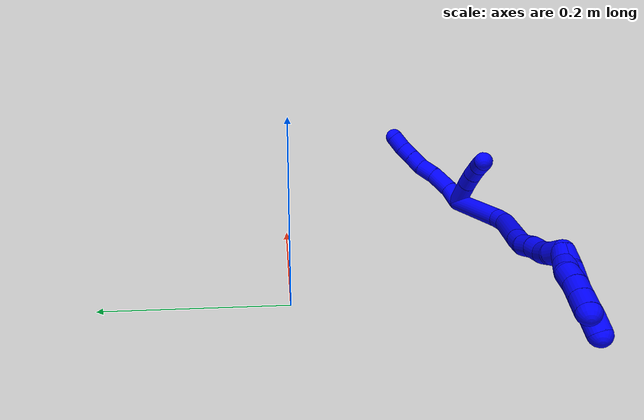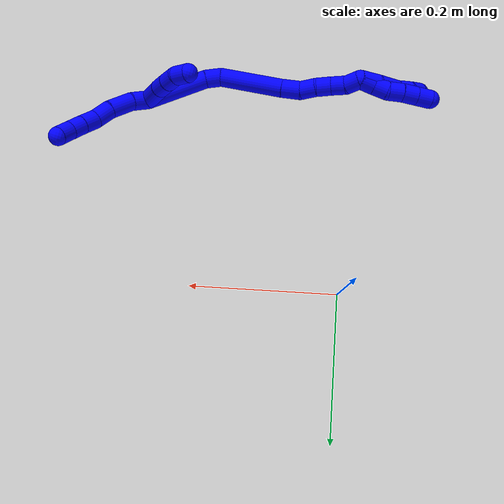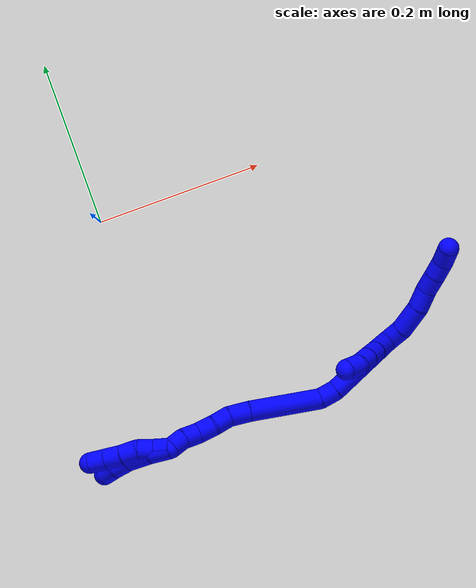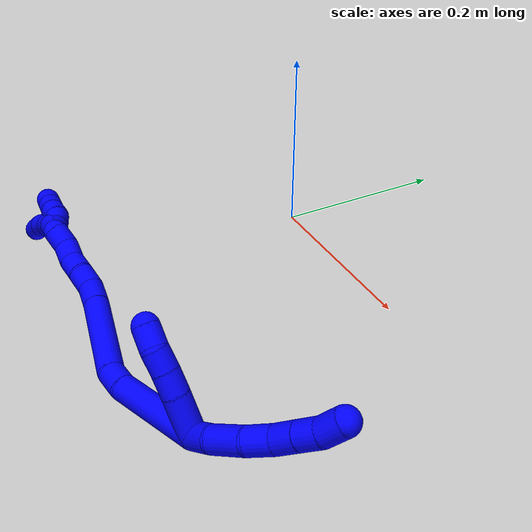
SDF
<sdf version="1.7">
 <world name="default">
  <model name="1">
   <static>0</static>
   <link name="1">
    <collision name="collision-cylinder-e_1_2_8">
     <pose>0.003713 0.005586 0.011015 -0.469323 0.292013 -0.070282</pose>
     <geometry><cylinder><radius>0.0125</radius><length>0.025792</length></cylinder></geometry>
     <surface>
      <friction><ode><mu>1.16</mu><mu2>1.16</mu2><slip1>0</slip1><slip2>0</slip2></ode></friction>
      <contact><ode><kp>1e+06</kp><kd>1</kd><max_vel>0</max_vel><min_depth>0.001</min_depth></ode></contact>
     </surface>
    </collision>
    <visual name="visual-cylinder-e_1_2_8">
     <pose>0.003713 0.005586 0.011015 -0.469323 0.292013 -0.070282</pose>
     <geometry><cylinder><radius>0.0125</radius><length>0.025792</length></cylinder></geometry>
     <material><ambient>0 0 1 1</ambient></material>
    </visual>
    <collision name="collision-cylinder-e_2_8_9">
     <pose>0.01546 0.019706 0.03456 -0.597923 0.487379 -0.152956</pose>
     <geometry><cylinder><radius>0.0125</radius><length>0.034316</length></cylinder></geometry>
     <surface>
      <friction><ode><mu>1.16</mu><mu2>1.16</mu2><slip1>0</slip1><slip2>0</slip2></ode></friction>
      <contact><ode><kp>1e+06</kp><kd>1</kd><max_vel>0</max_vel><min_depth>0.001</min_depth></ode></contact>
     </surface>
    </collision>
    <visual name="visual-cylinder-e_2_8_9">
     <pose>0.01546 0.019706 0.03456 -0.597923 0.487379 -0.152956</pose>
     <geometry><cylinder><radius>0.0125</radius><length>0.034316</length></cylinder></geometry>
     <material><ambient>0 0 1 1</ambient></material>
    </visual>
    <collision name="collision-cylinder-e_3_9_10">
     <pose>0.031002 0.035102 0.054379 -0.755213 0.6434 -0.262858</pose>
     <geometry><cylinder><radius>0.0125</radius><length>0.025026</length></cylinder></geometry>
     <surface>
      <friction><ode><mu>1.16</mu><mu2>1.16</mu2><slip1>0</slip1><slip2>0</slip2></ode></friction>
      <contact><ode><kp>1e+06</kp><kd>1</kd><max_vel>0</max_vel><min_depth>0.001</min_depth></ode></contact>
     </surface>
    </collision>
    <visual name="visual-cylinder-e_3_9_10">
     <pose>0.031002 0.035102 0.054379 -0.755213 0.6434 -0.262858</pose>
     <geometry><cylinder><radius>0.0125</radius><length>0.025026</length></cylinder></geometry>
     <material><ambient>0 0 1 1</ambient></material>
    </visual>
    <collision name="collision-cylinder-e_4_10_11">
     <pose>0.043055 0.048943 0.068872 -0.769568 0.425494 -0.174516</pose>
     <geometry><cylinder><radius>0.0125</radius><length>0.022024</length></cylinder></geometry>
     <surface>
      <friction><ode><mu>1.16</mu><mu2>1.16</mu2><slip1>0</slip1><slip2>0</slip2></ode></friction>
      <contact><ode><kp>1e+06</kp><kd>1</kd><max_vel>0</max_vel><min_depth>0.001</min_depth></ode></contact>
     </surface>
    </collision>
    <visual name="visual-cylinder-e_4_10_11">
     <pose>0.043055 0.048943 0.068872 -0.769568 0.425494 -0.174516</pose>
     <geometry><cylinder><radius>0.0125</radius><length>0.022024</length></cylinder></geometry>
     <material><ambient>0 0 1 1</ambient></material>
    </visual>
    <collision name="collision-cylinder-e_5_11_12">
     <pose>0.052066 0.062315 0.082564 -0.778003 0.455869 -0.18959</pose>
     <geometry><cylinder><radius>0.0125</radius><length>0.020287</length></cylinder></geometry>
     <surface>
      <friction><ode><mu>1.16</mu><mu2>1.16</mu2><slip1>0</slip1><slip2>0</slip2></ode></friction>
      <contact><ode><kp>1e+06</kp><kd>1</kd><max_vel>0</max_vel><min_depth>0.001</min_depth></ode></contact>
     </surface>
    </collision>
    <visual name="visual-cylinder-e_5_11_12">
     <pose>0.052066 0.062315 0.082564 -0.778003 0.455869 -0.18959</pose>
     <geometry><cylinder><radius>0.0125</radius><length>0.020287</length></cylinder></geometry>
     <material><ambient>0 0 1 1</ambient></material>
    </visual>
    <collision name="collision-cylinder-e_6_12_6">
     <pose>0.059896 0.077622 0.095083 -0.975977 0.302982 -0.161713</pose>
     <geometry><cylinder><radius>0.0125</radius><length>0.022554</length></cylinder></geometry>
     <surface>
      <friction><ode><mu>1.16</mu><mu2>1.16</mu2><slip1>0</slip1><slip2>0</slip2></ode></friction>
      <contact><ode><kp>1e+06</kp><kd>1</kd><max_vel>0</max_vel><min_depth>0.001</min_depth></ode></contact>
     </surface>
    </collision>
    <visual name="visual-cylinder-e_6_12_6">
     <pose>0.059896 0.077622 0.095083 -0.975977 0.302982 -0.161713</pose>
     <geometry><cylinder><radius>0.0125</radius><length>0.022554</length></cylinder></geometry>
     <material><ambient>0 0 1 1</ambient></material>
    </visual>
    <collision name="collision-cylinder-e_1_2_13">
     <pose>-0.012612 0.013924 -0.003633 -1.826 -0.719668 0.906317</pose>
     <geometry><cylinder><radius>0.0125</radius><length>0.038269</length></cylinder></geometry>
     <surface>
      <friction><ode><mu>1.16</mu><mu2>1.16</mu2><slip1>0</slip1><slip2>0</slip2></ode></friction>
      <contact><ode><kp>1e+06</kp><kd>1</kd><max_vel>0</max_vel><min_depth>0.001</min_depth></ode></contact>
     </surface>
    </collision>
    <visual name="visual-cylinder-e_1_2_13">
     <pose>-0.012612 0.013924 -0.003633 -1.826 -0.719668 0.906317</pose>
     <geometry><cylinder><radius>0.0125</radius><length>0.038269</length></cylinder></geometry>
     <material><ambient>0 0 1 1</ambient></material>
    </visual>
    <collision name="collision-cylinder-e_2_13_14">
     <pose>-0.032245 0.035188 -0.010142 -1.94433 -0.727507 1.01808</pose>
     <geometry><cylinder><radius>0.0125</radius><length>0.021115</length></cylinder></geometry>
     <surface>
      <friction><ode><mu>1.16</mu><mu2>1.16</mu2><slip1>0</slip1><slip2>0</slip2></ode></friction>
      <contact><ode><kp>1e+06</kp><kd>1</kd><max_vel>0</max_vel><min_depth>0.001</min_depth></ode></contact>
     </surface>
    </collision>
    <visual name="visual-cylinder-e_2_13_14">
     <pose>-0.032245 0.035188 -0.010142 -1.94433 -0.727507 1.01808</pose>
     <geometry><cylinder><radius>0.0125</radius><length>0.021115</length></cylinder></geometry>
     <material><ambient>0 0 1 1</ambient></material>
    </visual>
    <collision name="collision-cylinder-e_3_14_15">
     <pose>-0.046192 0.049055 -0.01625 -2.0305 -0.760358 1.14395</pose>
     <geometry><cylinder><radius>0.0125</radius><length>0.020099</length></cylinder></geometry>
     <surface>
      <friction><ode><mu>1.16</mu><mu2>1.16</mu2><slip1>0</slip1><slip2>0</slip2></ode></friction>
      <contact><ode><kp>1e+06</kp><kd>1</kd><max_vel>0</max_vel><min_depth>0.001</min_depth></ode></contact>
     </surface>
    </collision>
    <visual name="visual-cylinder-e_3_14_15">
     <pose>-0.046192 0.049055 -0.01625 -2.0305 -0.760358 1.14395</pose>
     <geometry><cylinder><radius>0.0125</radius><length>0.020099</length></cylinder></geometry>
     <material><ambient>0 0 1 1</ambient></material>
    </visual>
    <collision name="collision-cylinder-e_4_15_5">
     <pose>-0.058432 0.061823 -0.025647 -2.35004 -0.544559 1.17821</pose>
     <geometry><cylinder><radius>0.0125</radius><length>0.020517</length></cylinder></geometry>
     <surface>
      <friction><ode><mu>1.16</mu><mu2>1.16</mu2><slip1>0</slip1><slip2>0</slip2></ode></friction>
      <contact><ode><kp>1e+06</kp><kd>1</kd><max_vel>0</max_vel><min_depth>0.001</min_depth></ode></contact>
     </surface>
    </collision>
    <visual name="visual-cylinder-e_4_15_5">
     <pose>-0.058432 0.061823 -0.025647 -2.35004 -0.544559 1.17821</pose>
     <geometry><cylinder><radius>0.0125</radius><length>0.020517</length></cylinder></geometry>
     <material><ambient>0 0 1 1</ambient></material>
    </visual>
    <collision name="collision-cylinder-e_1_2_16">
     <pose>-0.026195 -0.001351 -0.032962 3.10062 -0.671091 -3.02422</pose>
     <geometry><cylinder><radius>0.0125</radius><length>0.084249</length></cylinder></geometry>
     <surface>
      <friction><ode><mu>1.16</mu><mu2>1.16</mu2><slip1>0</slip1><slip2>0</slip2></ode></friction>
      <contact><ode><kp>1e+06</kp><kd>1</kd><max_vel>0</max_vel><min_depth>0.001</min_depth></ode></contact>
     </surface>
    </collision>
    <visual name="visual-cylinder-e_1_2_16">
     <pose>-0.026195 -0.001351 -0.032962 3.10062 -0.671091 -3.02422</pose>
     <geometry><cylinder><radius>0.0125</radius><length>0.084249</length></cylinder></geometry>
     <material><ambient>0 0 1 1</ambient></material>
    </visual>
    <collision name="collision-cylinder-e_2_16_17">
     <pose>-0.057207 -0.001342 -0.075237 -2.99654 -0.473052 2.55607</pose>
     <geometry><cylinder><radius>0.0125</radius><length>0.021148</length></cylinder></geometry>
     <surface>
      <friction><ode><mu>1.16</mu><mu2>1.16</mu2><slip1>0</slip1><slip2>0</slip2></ode></friction>
      <contact><ode><kp>1e+06</kp><kd>1</kd><max_vel>0</max_vel><min_depth>0.001</min_depth></ode></contact>
     </surface>
    </collision>
    <visual name="visual-cylinder-e_2_16_17">
     <pose>-0.057207 -0.001342 -0.075237 -2.99654 -0.473052 2.55607</pose>
     <geometry><cylinder><radius>0.0125</radius><length>0.021148</length></cylinder></geometry>
     <material><ambient>0 0 1 1</ambient></material>
    </visual>
    <collision name="collision-cylinder-e_3_17_18">
     <pose>-0.071049 0.015587 -0.123723 -2.76329 -0.210921 1.01017</pose>
     <geometry><cylinder><radius>0.0125</radius><length>0.086215</length></cylinder></geometry>
     <surface>
      <friction><ode><mu>1.16</mu><mu2>1.16</mu2><slip1>0</slip1><slip2>0</slip2></ode></friction>
      <contact><ode><kp>1e+06</kp><kd>1</kd><max_vel>0</max_vel><min_depth>0.001</min_depth></ode></contact>
     </surface>
    </collision>
    <visual name="visual-cylinder-e_3_17_18">
     <pose>-0.071049 0.015587 -0.123723 -2.76329 -0.210921 1.01017</pose>
     <geometry><cylinder><radius>0.0125</radius><length>0.086215</length></cylinder></geometry>
     <material><ambient>0 0 1 1</ambient></material>
    </visual>
    <collision name="collision-cylinder-e_4_18_19">
     <pose>-0.083384 0.035079 -0.174482 -2.81517 -0.264204 1.35785</pose>
     <geometry><cylinder><radius>0.0125</radius><length>0.025347</length></cylinder></geometry>
     <surface>
      <friction><ode><mu>1.16</mu><mu2>1.16</mu2><slip1>0</slip1><slip2>0</slip2></ode></friction>
      <contact><ode><kp>1e+06</kp><kd>1</kd><max_vel>0</max_vel><min_depth>0.001</min_depth></ode></contact>
     </surface>
    </collision>
    <visual name="visual-cylinder-e_4_18_19">
     <pose>-0.083384 0.035079 -0.174482 -2.81517 -0.264204 1.35785</pose>
     <geometry><cylinder><radius>0.0125</radius><length>0.025347</length></cylinder></geometry>
     <material><ambient>0 0 1 1</ambient></material>
    </visual>
    <collision name="collision-cylinder-e_5_19_20">
     <pose>-0.092564 0.042279 -0.194344 -2.76452 -0.583144 2.00902</pose>
     <geometry><cylinder><radius>0.0125</radius><length>0.021322</length></cylinder></geometry>
     <surface>
      <friction><ode><mu>1.16</mu><mu2>1.16</mu2><slip1>0</slip1><slip2>0</slip2></ode></friction>
      <contact><ode><kp>1e+06</kp><kd>1</kd><max_vel>0</max_vel><min_depth>0.001</min_depth></ode></contact>
     </surface>
    </collision>
    <visual name="visual-cylinder-e_5_19_20">
     <pose>-0.092564 0.042279 -0.194344 -2.76452 -0.583144 2.00902</pose>
     <geometry><cylinder><radius>0.0125</radius><length>0.021322</length></cylinder></geometry>
     <material><ambient>0 0 1 1</ambient></material>
    </visual>
    <collision name="collision-cylinder-e_6_20_21">
     <pose>-0.103053 0.047518 -0.21182 -2.93147 -0.456285 2.28898</pose>
     <geometry><cylinder><radius>0.0125</radius><length>0.020963</length></cylinder></geometry>
     <surface>
      <friction><ode><mu>1.16</mu><mu2>1.16</mu2><slip1>0</slip1><slip2>0</slip2></ode></friction>
      <contact><ode><kp>1e+06</kp><kd>1</kd><max_vel>0</max_vel><min_depth>0.001</min_depth></ode></contact>
     </surface>
    </collision>
    <visual name="visual-cylinder-e_6_20_21">
     <pose>-0.103053 0.047518 -0.21182 -2.93147 -0.456285 2.28898</pose>
     <geometry><cylinder><radius>0.0125</radius><length>0.020963</length></cylinder></geometry>
     <material><ambient>0 0 1 1</ambient></material>
    </visual>
    <collision name="collision-cylinder-e_7_21_22">
     <pose>-0.112095 0.054089 -0.229004 -2.61794 -0.447498 1.40803</pose>
     <geometry><cylinder><radius>0.0125</radius><length>0.020446</length></cylinder></geometry>
     <surface>
      <friction><ode><mu>1.16</mu><mu2>1.16</mu2><slip1>0</slip1><slip2>0</slip2></ode></friction>
      <contact><ode><kp>1e+06</kp><kd>1</kd><max_vel>0</max_vel><min_depth>0.001</min_depth></ode></contact>
     </surface>
    </collision>
    <visual name="visual-cylinder-e_7_21_22">
     <pose>-0.112095 0.054089 -0.229004 -2.61794 -0.447498 1.40803</pose>
     <geometry><cylinder><radius>0.0125</radius><length>0.020446</length></cylinder></geometry>
     <material><ambient>0 0 1 1</ambient></material>
    </visual>
    <collision name="collision-cylinder-e_8_22_1">
     <pose>-0.123493 0.062912 -0.243044 -2.53384 -0.757123 1.80632</pose>
     <geometry><cylinder><radius>0.0125</radius><length>0.02031</length></cylinder></geometry>
     <surface>
      <friction><ode><mu>1.16</mu><mu2>1.16</mu2><slip1>0</slip1><slip2>0</slip2></ode></friction>
      <contact><ode><kp>1e+06</kp><kd>1</kd><max_vel>0</max_vel><min_depth>0.001</min_depth></ode></contact>
     </surface>
    </collision>
    <visual name="visual-cylinder-e_8_22_1">
     <pose>-0.123493 0.062912 -0.243044 -2.53384 -0.757123 1.80632</pose>
     <geometry><cylinder><radius>0.0125</radius><length>0.02031</length></cylinder></geometry>
     <material><ambient>0 0 1 1</ambient></material>
    </visual>
    <collision name="collision-cylinder-e_1_1_23">
     <pose>-0.129876 0.067525 -0.259078 -3.10168 0.059289 -1.95678</pose>
     <geometry><cylinder><radius>0.0125</radius><length>0.02</length></cylinder></geometry>
     <surface>
      <friction><ode><mu>1.16</mu><mu2>1.16</mu2><slip1>0</slip1><slip2>0</slip2></ode></friction>
      <contact><ode><kp>1e+06</kp><kd>1</kd><max_vel>0</max_vel><min_depth>0.001</min_depth></ode></contact>
     </surface>
    </collision>
    <visual name="visual-cylinder-e_1_1_23">
     <pose>-0.129876 0.067525 -0.259078 -3.10168 0.059289 -1.95678</pose>
     <geometry><cylinder><radius>0.0125</radius><length>0.02</length></cylinder></geometry>
     <material><ambient>0 0 1 1</ambient></material>
    </visual>
    <collision name="collision-cylinder-e_2_23_24">
     <pose>-0.129301 0.070815 -0.278625 -2.84826 -0.00175 0.011847</pose>
     <geometry><cylinder><radius>0.0125</radius><length>0.02</length></cylinder></geometry>
     <surface>
      <friction><ode><mu>1.16</mu><mu2>1.16</mu2><slip1>0</slip1><slip2>0</slip2></ode></friction>
      <contact><ode><kp>1e+06</kp><kd>1</kd><max_vel>0</max_vel><min_depth>0.001</min_depth></ode></contact>
     </surface>
    </collision>
    <visual name="visual-cylinder-e_2_23_24">
     <pose>-0.129301 0.070815 -0.278625 -2.84826 -0.00175 0.011847</pose>
     <geometry><cylinder><radius>0.0125</radius><length>0.02</length></cylinder></geometry>
     <material><ambient>0 0 1 1</ambient></material>
    </visual>
    <collision name="collision-cylinder-e_3_24_25">
     <pose>-0.131561 0.074051 -0.297937 -3.10625 -0.226229 2.83296</pose>
     <geometry><cylinder><radius>0.0125</radius><length>0.02</length></cylinder></geometry>
     <surface>
      <friction><ode><mu>1.16</mu><mu2>1.16</mu2><slip1>0</slip1><slip2>0</slip2></ode></friction>
      <contact><ode><kp>1e+06</kp><kd>1</kd><max_vel>0</max_vel><min_depth>0.001</min_depth></ode></contact>
     </surface>
    </collision>
    <visual name="visual-cylinder-e_3_24_25">
     <pose>-0.131561 0.074051 -0.297937 -3.10625 -0.226229 2.83296</pose>
     <geometry><cylinder><radius>0.0125</radius><length>0.02</length></cylinder></geometry>
     <material><ambient>0 0 1 1</ambient></material>
    </visual>
    <collision name="collision-cylinder-e_4_25_26">
     <pose>-0.134957 0.074754 -0.317603 -3.10547 -0.115533 2.53616</pose>
     <geometry><cylinder><radius>0.0125</radius><length>0.02</length></cylinder></geometry>
     <surface>
      <friction><ode><mu>1.16</mu><mu2>1.16</mu2><slip1>0</slip1><slip2>0</slip2></ode></friction>
      <contact><ode><kp>1e+06</kp><kd>1</kd><max_vel>0</max_vel><min_depth>0.001</min_depth></ode></contact>
     </surface>
    </collision>
    <visual name="visual-cylinder-e_4_25_26">
     <pose>-0.134957 0.074754 -0.317603 -3.10547 -0.115533 2.53616</pose>
     <geometry><cylinder><radius>0.0125</radius><length>0.02</length></cylinder></geometry>
     <material><ambient>0 0 1 1</ambient></material>
    </visual>
    <collision name="collision-cylinder-e_5_26_4">
     <pose>-0.137245 0.075442 -0.33746 -3.10839 -0.113745 2.57411</pose>
     <geometry><cylinder><radius>0.0125</radius><length>0.02</length></cylinder></geometry>
     <surface>
      <friction><ode><mu>1.16</mu><mu2>1.16</mu2><slip1>0</slip1><slip2>0</slip2></ode></friction>
      <contact><ode><kp>1e+06</kp><kd>1</kd><max_vel>0</max_vel><min_depth>0.001</min_depth></ode></contact>
     </surface>
    </collision>
    <visual name="visual-cylinder-e_5_26_4">
     <pose>-0.137245 0.075442 -0.33746 -3.10839 -0.113745 2.57411</pose>
     <geometry><cylinder><radius>0.0125</radius><length>0.02</length></cylinder></geometry>
     <material><ambient>0 0 1 1</ambient></material>
    </visual>
    <collision name="collision-cylinder-e_1_1_27">
     <pose>-0.13159 0.066623 -0.261807 3.10192 -0.087989 -2.29485</pose>
     <geometry><cylinder><radius>0.0125</radius><length>0.025527</length></cylinder></geometry>
     <surface>
      <friction><ode><mu>1.16</mu><mu2>1.16</mu2><slip1>0</slip1><slip2>0</slip2></ode></friction>
      <contact><ode><kp>1e+06</kp><kd>1</kd><max_vel>0</max_vel><min_depth>0.001</min_depth></ode></contact>
     </surface>
    </collision>
    <visual name="visual-cylinder-e_1_1_27">
     <pose>-0.13159 0.066623 -0.261807 3.10192 -0.087989 -2.29485</pose>
     <geometry><cylinder><radius>0.0125</radius><length>0.025527</length></cylinder></geometry>
     <material><ambient>0 0 1 1</ambient></material>
    </visual>
    <collision name="collision-cylinder-e_2_27_28">
     <pose>-0.133079 0.061474 -0.290055 2.85124 -0.022652 -0.154628</pose>
     <geometry><cylinder><radius>0.0125</radius><length>0.032454</length></cylinder></geometry>
     <surface>
      <friction><ode><mu>1.16</mu><mu2>1.16</mu2><slip1>0</slip1><slip2>0</slip2></ode></friction>
      <contact><ode><kp>1e+06</kp><kd>1</kd><max_vel>0</max_vel><min_depth>0.001</min_depth></ode></contact>
     </surface>
    </collision>
    <visual name="visual-cylinder-e_2_27_28">
     <pose>-0.133079 0.061474 -0.290055 2.85124 -0.022652 -0.154628</pose>
     <geometry><cylinder><radius>0.0125</radius><length>0.032454</length></cylinder></geometry>
     <material><ambient>0 0 1 1</ambient></material>
    </visual>
    <collision name="collision-cylinder-e_3_28_29">
     <pose>-0.135326 0.05337 -0.315536 2.80659 -0.176728 -0.965254</pose>
     <geometry><cylinder><radius>0.0125</radius><length>0.021377</length></cylinder></geometry>
     <surface>
      <friction><ode><mu>1.16</mu><mu2>1.16</mu2><slip1>0</slip1><slip2>0</slip2></ode></friction>
      <contact><ode><kp>1e+06</kp><kd>1</kd><max_vel>0</max_vel><min_depth>0.001</min_depth></ode></contact>
     </surface>
    </collision>
    <visual name="visual-cylinder-e_3_28_29">
     <pose>-0.135326 0.05337 -0.315536 2.80659 -0.176728 -0.965254</pose>
     <geometry><cylinder><radius>0.0125</radius><length>0.021377</length></cylinder></geometry>
     <material><ambient>0 0 1 1</ambient></material>
    </visual>
    <collision name="collision-cylinder-e_4_29_3">
     <pose>-0.138002 0.044549 -0.334256 2.59346 -0.077291 -0.273342</pose>
     <geometry><cylinder><radius>0.0125</radius><length>0.020642</length></cylinder></geometry>
     <surface>
      <friction><ode><mu>1.16</mu><mu2>1.16</mu2><slip1>0</slip1><slip2>0</slip2></ode></friction>
      <contact><ode><kp>1e+06</kp><kd>1</kd><max_vel>0</max_vel><min_depth>0.001</min_depth></ode></contact>
     </surface>
    </collision>
    <visual name="visual-cylinder-e_4_29_3">
     <pose>-0.138002 0.044549 -0.334256 2.59346 -0.077291 -0.273342</pose>
     <geometry><cylinder><radius>0.0125</radius><length>0.020642</length></cylinder></geometry>
     <material><ambient>0 0 1 1</ambient></material>
    </visual>
    <collision name="collision-sphere-3">
     <pose>-0.138799 0.039186 -0.343039 0 -0 0</pose>
     <geometry><sphere><radius>0.0125</radius></sphere></geometry>
     <surface>
      <friction><ode><mu>1.16</mu><mu2>1.16</mu2><slip1>0</slip1><slip2>0</slip2></ode></friction>
      <contact><ode><kp>1e+06</kp><kd>1</kd><max_vel>0</max_vel><min_depth>0.001</min_depth></ode></contact>
     </surface>
    </collision>
    <visual name="visual-sphere-3">
     <pose>-0.138799 0.039186 -0.343039 0 -0 0</pose>
     <geometry><sphere><radius>0.0125</radius></sphere></geometry>
     <material><ambient>0 0 1 1</ambient></material>
    </visual>
    <collision name="collision-sphere-29">
     <pose>-0.137205 0.049911 -0.325473 0 -0 0</pose>
     <geometry><sphere><radius>0.0125</radius></sphere></geometry>
     <surface>
      <friction><ode><mu>1.16</mu><mu2>1.16</mu2><slip1>0</slip1><slip2>0</slip2></ode></friction>
      <contact><ode><kp>1e+06</kp><kd>1</kd><max_vel>0</max_vel><min_depth>0.001</min_depth></ode></contact>
     </surface>
    </collision>
    <visual name="visual-sphere-29">
     <pose>-0.137205 0.049911 -0.325473 0 -0 0</pose>
     <geometry><sphere><radius>0.0125</radius></sphere></geometry>
     <material><ambient>0 0 1 1</ambient></material>
    </visual>
    <collision name="collision-sphere-28">
     <pose>-0.133446 0.056829 -0.305599 0 -0 0</pose>
     <geometry><sphere><radius>0.0125</radius></sphere></geometry>
     <surface>
      <friction><ode><mu>1.16</mu><mu2>1.16</mu2><slip1>0</slip1><slip2>0</slip2></ode></friction>
      <contact><ode><kp>1e+06</kp><kd>1</kd><max_vel>0</max_vel><min_depth>0.001</min_depth></ode></contact>
     </surface>
    </collision>
    <visual name="visual-sphere-28">
     <pose>-0.133446 0.056829 -0.305599 0 -0 0</pose>
     <geometry><sphere><radius>0.0125</radius></sphere></geometry>
     <material><ambient>0 0 1 1</ambient></material>
    </visual>
    <collision name="collision-sphere-27">
     <pose>-0.132711 0.066119 -0.274511 0 -0 0</pose>
     <geometry><sphere><radius>0.0125</radius></sphere></geometry>
     <surface>
      <friction><ode><mu>1.16</mu><mu2>1.16</mu2><slip1>0</slip1><slip2>0</slip2></ode></friction>
      <contact><ode><kp>1e+06</kp><kd>1</kd><max_vel>0</max_vel><min_depth>0.001</min_depth></ode></contact>
     </surface>
    </collision>
    <visual name="visual-sphere-27">
     <pose>-0.132711 0.066119 -0.274511 0 -0 0</pose>
     <geometry><sphere><radius>0.0125</radius></sphere></geometry>
     <material><ambient>0 0 1 1</ambient></material>
    </visual>
    <collision name="collision-sphere-4">
     <pose>-0.13838 0.075772 -0.34739 0 -0 0</pose>
     <geometry><sphere><radius>0.0125</radius></sphere></geometry>
     <surface>
      <friction><ode><mu>1.16</mu><mu2>1.16</mu2><slip1>0</slip1><slip2>0</slip2></ode></friction>
      <contact><ode><kp>1e+06</kp><kd>1</kd><max_vel>0</max_vel><min_depth>0.001</min_depth></ode></contact>
     </surface>
    </collision>
    <visual name="visual-sphere-4">
     <pose>-0.13838 0.075772 -0.34739 0 -0 0</pose>
     <geometry><sphere><radius>0.0125</radius></sphere></geometry>
     <material><ambient>0 0 1 1</ambient></material>
    </visual>
    <collision name="collision-sphere-26">
     <pose>-0.13611 0.075113 -0.32753 0 -0 0</pose>
     <geometry><sphere><radius>0.0125</radius></sphere></geometry>
     <surface>
      <friction><ode><mu>1.16</mu><mu2>1.16</mu2><slip1>0</slip1><slip2>0</slip2></ode></friction>
      <contact><ode><kp>1e+06</kp><kd>1</kd><max_vel>0</max_vel><min_depth>0.001</min_depth></ode></contact>
     </surface>
    </collision>
    <visual name="visual-sphere-26">
     <pose>-0.13611 0.075113 -0.32753 0 -0 0</pose>
     <geometry><sphere><radius>0.0125</radius></sphere></geometry>
     <material><ambient>0 0 1 1</ambient></material>
    </visual>
    <collision name="collision-sphere-25">
     <pose>-0.133804 0.074395 -0.307676 0 -0 0</pose>
     <geometry><sphere><radius>0.0125</radius></sphere></geometry>
     <surface>
      <friction><ode><mu>1.16</mu><mu2>1.16</mu2><slip1>0</slip1><slip2>0</slip2></ode></friction>
      <contact><ode><kp>1e+06</kp><kd>1</kd><max_vel>0</max_vel><min_depth>0.001</min_depth></ode></contact>
     </surface>
    </collision>
    <visual name="visual-sphere-25">
     <pose>-0.133804 0.074395 -0.307676 0 -0 0</pose>
     <geometry><sphere><radius>0.0125</radius></sphere></geometry>
     <material><ambient>0 0 1 1</ambient></material>
    </visual>
    <collision name="collision-sphere-24">
     <pose>-0.129318 0.073707 -0.288198 0 -0 0</pose>
     <geometry><sphere><radius>0.0125</radius></sphere></geometry>
     <surface>
      <friction><ode><mu>1.16</mu><mu2>1.16</mu2><slip1>0</slip1><slip2>0</slip2></ode></friction>
      <contact><ode><kp>1e+06</kp><kd>1</kd><max_vel>0</max_vel><min_depth>0.001</min_depth></ode></contact>
     </surface>
    </collision>
    <visual name="visual-sphere-24">
     <pose>-0.129318 0.073707 -0.288198 0 -0 0</pose>
     <geometry><sphere><radius>0.0125</radius></sphere></geometry>
     <material><ambient>0 0 1 1</ambient></material>
    </visual>
    <collision name="collision-sphere-23">
     <pose>-0.129283 0.067924 -0.269053 0 -0 0</pose>
     <geometry><sphere><radius>0.0125</radius></sphere></geometry>
     <surface>
      <friction><ode><mu>1.16</mu><mu2>1.16</mu2><slip1>0</slip1><slip2>0</slip2></ode></friction>
      <contact><ode><kp>1e+06</kp><kd>1</kd><max_vel>0</max_vel><min_depth>0.001</min_depth></ode></contact>
     </surface>
    </collision>
    <visual name="visual-sphere-23">
     <pose>-0.129283 0.067924 -0.269053 0 -0 0</pose>
     <geometry><sphere><radius>0.0125</radius></sphere></geometry>
     <material><ambient>0 0 1 1</ambient></material>
    </visual>
    <collision name="collision-sphere-1">
     <pose>-0.130468 0.067127 -0.249104 0 -0 0</pose>
     <geometry><sphere><radius>0.0125</radius></sphere></geometry>
     <surface>
      <friction><ode><mu>1.16</mu><mu2>1.16</mu2><slip1>0</slip1><slip2>0</slip2></ode></friction>
      <contact><ode><kp>1e+06</kp><kd>1</kd><max_vel>0</max_vel><min_depth>0.001</min_depth></ode></contact>
     </surface>
    </collision>
    <visual name="visual-sphere-1">
     <pose>-0.130468 0.067127 -0.249104 0 -0 0</pose>
     <geometry><sphere><radius>0.0125</radius></sphere></geometry>
     <material><ambient>0 0 1 1</ambient></material>
    </visual>
    <collision name="collision-sphere-22">
     <pose>-0.116518 0.058698 -0.236985 0 -0 0</pose>
     <geometry><sphere><radius>0.0125</radius></sphere></geometry>
     <surface>
      <friction><ode><mu>1.16</mu><mu2>1.16</mu2><slip1>0</slip1><slip2>0</slip2></ode></friction>
      <contact><ode><kp>1e+06</kp><kd>1</kd><max_vel>0</max_vel><min_depth>0.001</min_depth></ode></contact>
     </surface>
    </collision>
    <visual name="visual-sphere-22">
     <pose>-0.116518 0.058698 -0.236985 0 -0 0</pose>
     <geometry><sphere><radius>0.0125</radius></sphere></geometry>
     <material><ambient>0 0 1 1</ambient></material>
    </visual>
    <collision name="collision-sphere-21">
     <pose>-0.107671 0.04948 -0.221022 0 -0 0</pose>
     <geometry><sphere><radius>0.0125</radius></sphere></geometry>
     <surface>
      <friction><ode><mu>1.16</mu><mu2>1.16</mu2><slip1>0</slip1><slip2>0</slip2></ode></friction>
      <contact><ode><kp>1e+06</kp><kd>1</kd><max_vel>0</max_vel><min_depth>0.001</min_depth></ode></contact>
     </surface>
    </collision>
    <visual name="visual-sphere-21">
     <pose>-0.107671 0.04948 -0.221022 0 -0 0</pose>
     <geometry><sphere><radius>0.0125</radius></sphere></geometry>
     <material><ambient>0 0 1 1</ambient></material>
    </visual>
    <collision name="collision-sphere-12">
     <pose>0.056531 0.068707 0.089051 0 -0 0</pose>
     <geometry><sphere><radius>0.0125</radius></sphere></geometry>
     <surface>
      <friction><ode><mu>1.16</mu><mu2>1.16</mu2><slip1>0</slip1><slip2>0</slip2></ode></friction>
      <contact><ode><kp>1e+06</kp><kd>1</kd><max_vel>0</max_vel><min_depth>0.001</min_depth></ode></contact>
     </surface>
    </collision>
    <visual name="visual-sphere-12">
     <pose>0.056531 0.068707 0.089051 0 -0 0</pose>
     <geometry><sphere><radius>0.0125</radius></sphere></geometry>
     <material><ambient>0 0 1 1</ambient></material>
    </visual>
    <collision name="collision-sphere-11">
     <pose>0.0476 0.055922 0.076076 0 -0 0</pose>
     <geometry><sphere><radius>0.0125</radius></sphere></geometry>
     <surface>
      <friction><ode><mu>1.16</mu><mu2>1.16</mu2><slip1>0</slip1><slip2>0</slip2></ode></friction>
      <contact><ode><kp>1e+06</kp><kd>1</kd><max_vel>0</max_vel><min_depth>0.001</min_depth></ode></contact>
     </surface>
    </collision>
    <visual name="visual-sphere-11">
     <pose>0.0476 0.055922 0.076076 0 -0 0</pose>
     <geometry><sphere><radius>0.0125</radius></sphere></geometry>
     <material><ambient>0 0 1 1</ambient></material>
    </visual>
    <collision name="collision-sphere-10">
     <pose>0.038509 0.041964 0.061668 0 -0 0</pose>
     <geometry><sphere><radius>0.0125</radius></sphere></geometry>
     <surface>
      <friction><ode><mu>1.16</mu><mu2>1.16</mu2><slip1>0</slip1><slip2>0</slip2></ode></friction>
      <contact><ode><kp>1e+06</kp><kd>1</kd><max_vel>0</max_vel><min_depth>0.001</min_depth></ode></contact>
     </surface>
    </collision>
    <visual name="visual-sphere-10">
     <pose>0.038509 0.041964 0.061668 0 -0 0</pose>
     <geometry><sphere><radius>0.0125</radius></sphere></geometry>
     <material><ambient>0 0 1 1</ambient></material>
    </visual>
    <collision name="collision-sphere-9">
     <pose>0.023496 0.02824 0.04709 0 -0 0</pose>
     <geometry><sphere><radius>0.0125</radius></sphere></geometry>
     <surface>
      <friction><ode><mu>1.16</mu><mu2>1.16</mu2><slip1>0</slip1><slip2>0</slip2></ode></friction>
      <contact><ode><kp>1e+06</kp><kd>1</kd><max_vel>0</max_vel><min_depth>0.001</min_depth></ode></contact>
     </surface>
    </collision>
    <visual name="visual-sphere-9">
     <pose>0.023496 0.02824 0.04709 0 -0 0</pose>
     <geometry><sphere><radius>0.0125</radius></sphere></geometry>
     <material><ambient>0 0 1 1</ambient></material>
    </visual>
    <collision name="collision-sphere-2">
     <geometry><sphere><radius>0.0125</radius></sphere></geometry>
     <surface>
      <friction><ode><mu>1.16</mu><mu2>1.16</mu2><slip1>0</slip1><slip2>0</slip2></ode></friction>
      <contact><ode><kp>1e+06</kp><kd>1</kd><max_vel>0</max_vel><min_depth>0.001</min_depth></ode></contact>
     </surface>
    </collision>
    <visual name="visual-sphere-2">
     <geometry><sphere><radius>0.0125</radius></sphere></geometry>
     <material><ambient>0 0 1 1</ambient></material>
    </visual>
    <collision name="collision-sphere-19">
     <pose>-0.086693 0.039002 -0.18607 0 -0 0</pose>
     <geometry><sphere><radius>0.0125</radius></sphere></geometry>
     <surface>
      <friction><ode><mu>1.16</mu><mu2>1.16</mu2><slip1>0</slip1><slip2>0</slip2></ode></friction>
      <contact><ode><kp>1e+06</kp><kd>1</kd><max_vel>0</max_vel><min_depth>0.001</min_depth></ode></contact>
     </surface>
    </collision>
    <visual name="visual-sphere-19">
     <pose>-0.086693 0.039002 -0.18607 0 -0 0</pose>
     <geometry><sphere><radius>0.0125</radius></sphere></geometry>
     <material><ambient>0 0 1 1</ambient></material>
    </visual>
    <collision name="collision-sphere-8">
     <pose>0.007425 0.011172 0.02203 0 -0 0</pose>
     <geometry><sphere><radius>0.0125</radius></sphere></geometry>
     <surface>
      <friction><ode><mu>1.16</mu><mu2>1.16</mu2><slip1>0</slip1><slip2>0</slip2></ode></friction>
      <contact><ode><kp>1e+06</kp><kd>1</kd><max_vel>0</max_vel><min_depth>0.001</min_depth></ode></contact>
     </surface>
    </collision>
    <visual name="visual-sphere-8">
     <pose>0.007425 0.011172 0.02203 0 -0 0</pose>
     <geometry><sphere><radius>0.0125</radius></sphere></geometry>
     <material><ambient>0 0 1 1</ambient></material>
    </visual>
    <collision name="collision-sphere-6">
     <pose>0.063261 0.086537 0.101114 0 -0 0</pose>
     <geometry><sphere><radius>0.0125</radius></sphere></geometry>
     <surface>
      <friction><ode><mu>1.16</mu><mu2>1.16</mu2><slip1>0</slip1><slip2>0</slip2></ode></friction>
      <contact><ode><kp>1e+06</kp><kd>1</kd><max_vel>0</max_vel><min_depth>0.001</min_depth></ode></contact>
     </surface>
    </collision>
    <visual name="visual-sphere-6">
     <pose>0.063261 0.086537 0.101114 0 -0 0</pose>
     <geometry><sphere><radius>0.0125</radius></sphere></geometry>
     <material><ambient>0 0 1 1</ambient></material>
    </visual>
    <collision name="collision-sphere-13">
     <pose>-0.025225 0.027847 -0.007265 0 -0 0</pose>
     <geometry><sphere><radius>0.0125</radius></sphere></geometry>
     <surface>
      <friction><ode><mu>1.16</mu><mu2>1.16</mu2><slip1>0</slip1><slip2>0</slip2></ode></friction>
      <contact><ode><kp>1e+06</kp><kd>1</kd><max_vel>0</max_vel><min_depth>0.001</min_depth></ode></contact>
     </surface>
    </collision>
    <visual name="visual-sphere-13">
     <pose>-0.025225 0.027847 -0.007265 0 -0 0</pose>
     <geometry><sphere><radius>0.0125</radius></sphere></geometry>
     <material><ambient>0 0 1 1</ambient></material>
    </visual>
    <collision name="collision-sphere-14">
     <pose>-0.039266 0.042529 -0.013019 0 -0 0</pose>
     <geometry><sphere><radius>0.0125</radius></sphere></geometry>
     <surface>
      <friction><ode><mu>1.16</mu><mu2>1.16</mu2><slip1>0</slip1><slip2>0</slip2></ode></friction>
      <contact><ode><kp>1e+06</kp><kd>1</kd><max_vel>0</max_vel><min_depth>0.001</min_depth></ode></contact>
     </surface>
    </collision>
    <visual name="visual-sphere-14">
     <pose>-0.039266 0.042529 -0.013019 0 -0 0</pose>
     <geometry><sphere><radius>0.0125</radius></sphere></geometry>
     <material><ambient>0 0 1 1</ambient></material>
    </visual>
    <collision name="collision-sphere-15">
     <pose>-0.053118 0.055581 -0.019481 0 -0 0</pose>
     <geometry><sphere><radius>0.0125</radius></sphere></geometry>
     <surface>
      <friction><ode><mu>1.16</mu><mu2>1.16</mu2><slip1>0</slip1><slip2>0</slip2></ode></friction>
      <contact><ode><kp>1e+06</kp><kd>1</kd><max_vel>0</max_vel><min_depth>0.001</min_depth></ode></contact>
     </surface>
    </collision>
    <visual name="visual-sphere-15">
     <pose>-0.053118 0.055581 -0.019481 0 -0 0</pose>
     <geometry><sphere><radius>0.0125</radius></sphere></geometry>
     <material><ambient>0 0 1 1</ambient></material>
    </visual>
    <collision name="collision-sphere-5">
     <pose>-0.063747 0.068066 -0.031814 0 -0 0</pose>
     <geometry><sphere><radius>0.0125</radius></sphere></geometry>
     <surface>
      <friction><ode><mu>1.16</mu><mu2>1.16</mu2><slip1>0</slip1><slip2>0</slip2></ode></friction>
      <contact><ode><kp>1e+06</kp><kd>1</kd><max_vel>0</max_vel><min_depth>0.001</min_depth></ode></contact>
     </surface>
    </collision>
    <visual name="visual-sphere-5">
     <pose>-0.063747 0.068066 -0.031814 0 -0 0</pose>
     <geometry><sphere><radius>0.0125</radius></sphere></geometry>
     <material><ambient>0 0 1 1</ambient></material>
    </visual>
    <collision name="collision-sphere-16">
     <pose>-0.052389 -0.002703 -0.065924 0 -0 0</pose>
     <geometry><sphere><radius>0.0125</radius></sphere></geometry>
     <surface>
      <friction><ode><mu>1.16</mu><mu2>1.16</mu2><slip1>0</slip1><slip2>0</slip2></ode></friction>
      <contact><ode><kp>1e+06</kp><kd>1</kd><max_vel>0</max_vel><min_depth>0.001</min_depth></ode></contact>
     </surface>
    </collision>
    <visual name="visual-sphere-16">
     <pose>-0.052389 -0.002703 -0.065924 0 -0 0</pose>
     <geometry><sphere><radius>0.0125</radius></sphere></geometry>
     <material><ambient>0 0 1 1</ambient></material>
    </visual>
    <collision name="collision-sphere-17">
     <pose>-0.062024 1.9e-05 -0.084551 0 -0 0</pose>
     <geometry><sphere><radius>0.0125</radius></sphere></geometry>
     <surface>
      <friction><ode><mu>1.16</mu><mu2>1.16</mu2><slip1>0</slip1><slip2>0</slip2></ode></friction>
      <contact><ode><kp>1e+06</kp><kd>1</kd><max_vel>0</max_vel><min_depth>0.001</min_depth></ode></contact>
     </surface>
    </collision>
    <visual name="visual-sphere-17">
     <pose>-0.062024 1.9e-05 -0.084551 0 -0 0</pose>
     <geometry><sphere><radius>0.0125</radius></sphere></geometry>
     <material><ambient>0 0 1 1</ambient></material>
    </visual>
    <collision name="collision-sphere-18">
     <pose>-0.080074 0.031156 -0.162895 0 -0 0</pose>
     <geometry><sphere><radius>0.0125</radius></sphere></geometry>
     <surface>
      <friction><ode><mu>1.16</mu><mu2>1.16</mu2><slip1>0</slip1><slip2>0</slip2></ode></friction>
      <contact><ode><kp>1e+06</kp><kd>1</kd><max_vel>0</max_vel><min_depth>0.001</min_depth></ode></contact>
     </surface>
    </collision>
    <visual name="visual-sphere-18">
     <pose>-0.080074 0.031156 -0.162895 0 -0 0</pose>
     <geometry><sphere><radius>0.0125</radius></sphere></geometry>
     <material><ambient>0 0 1 1</ambient></material>
    </visual>
    <collision name="collision-sphere-20">
     <pose>-0.098434 0.045555 -0.202618 0 -0 0</pose>
     <geometry><sphere><radius>0.0125</radius></sphere></geometry>
     <surface>
      <friction><ode><mu>1.16</mu><mu2>1.16</mu2><slip1>0</slip1><slip2>0</slip2></ode></friction>
      <contact><ode><kp>1e+06</kp><kd>1</kd><max_vel>0</max_vel><min_depth>0.001</min_depth></ode></contact>
     </surface>
    </collision>
    <visual name="visual-sphere-20">
     <pose>-0.098434 0.045555 -0.202618 0 -0 0</pose>
     <geometry><sphere><radius>0.0125</radius></sphere></geometry>
     <material><ambient>0 0 1 1</ambient></material>
    </visual>
    <inertial>
     <pose>-0.061068 0.038269 -0.120339 0 -0 0</pose>
     <mass>0.75</mass>
     <inertia>
      <ixx>4.5e-05</ixx>
      <ixy>0</ixy>
      <ixz>0</ixz>
      <iyy>0.000113</iyy>
      <iyz>0</iyz>
      <izz>-1.3e-05</izz>
     </inertia>
    </inertial>
   </link>
   <pose>0.272513 -0.251648 0.012027 1.24944 0.470404 1.2289</pose>
  </model>
 </world>
</sdf>
